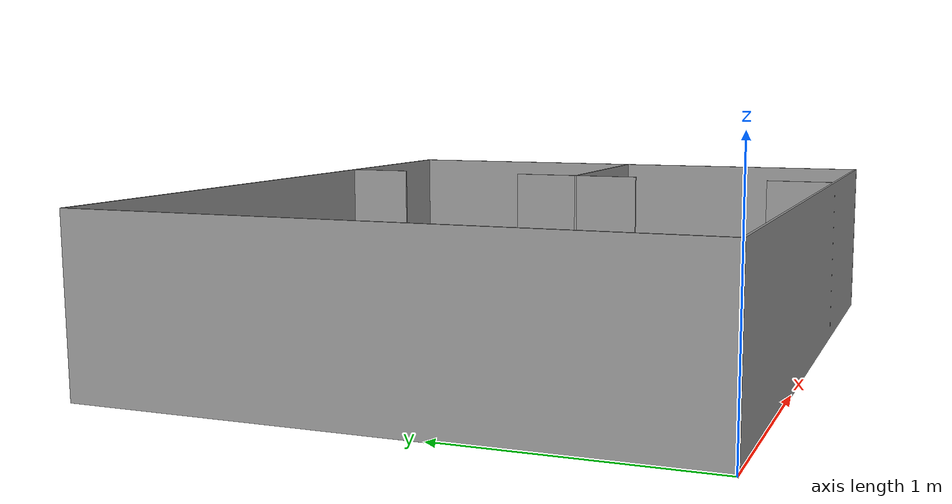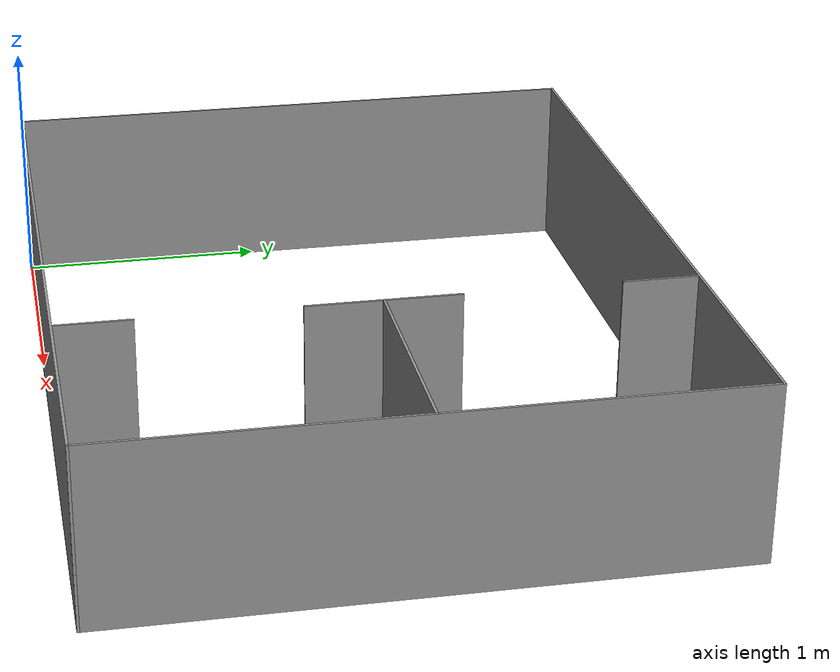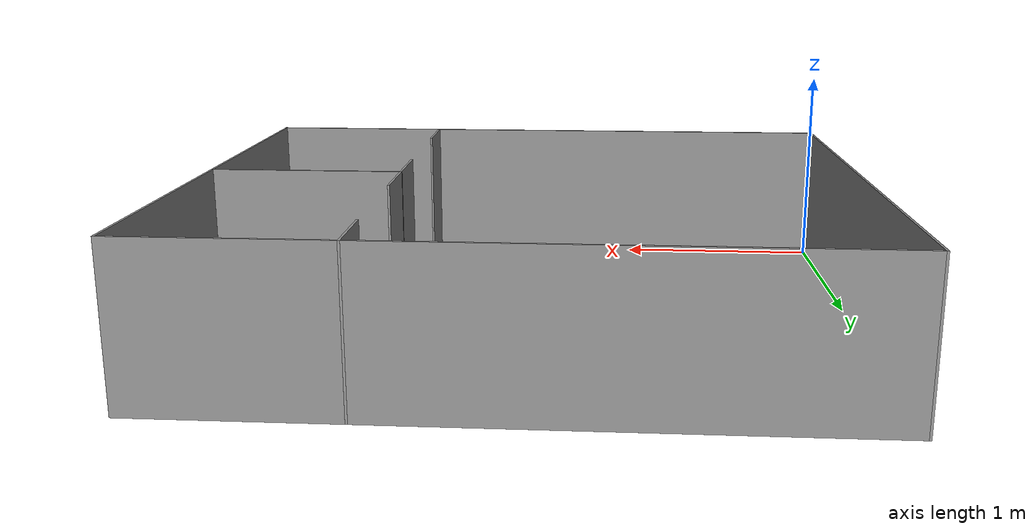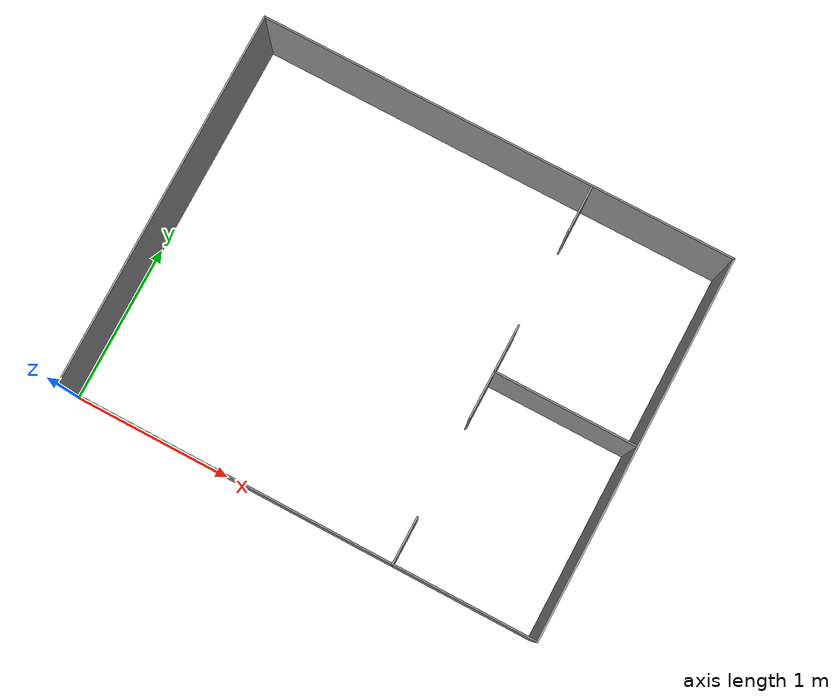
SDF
<?xml version='1.0'?>
<sdf version='1.7'>
  <model name='robot_tank_walls'>
    <pose>1.495 1.195 0 0 -0 0</pose>
    <link name='Wall_39'>
      <collision name='Wall_39_Collision'>
        <geometry>
          <box>
            <size>3 0.01 0.7</size>
          </box>
        </geometry>
        <pose>0 0 0.35 0 -0 0</pose>
      </collision>
      <visual name='Wall_39_Visual'>
        <pose>0 0 0.35 0 -0 0</pose>
        <geometry>
          <box>
            <size>3 0.01 0.7</size>
          </box>
        </geometry>
        <material>
          <script>
            <uri>file://media/materials/scripts/gazebo.material</uri>
            <name>Gazebo/Grey</name>
          </script>
          <ambient>1 1 1 1</ambient>
        </material>
        <meta>
          <layer>0</layer>
        </meta>
      </visual>
      <pose>0 -1.195 0 0 -0 0</pose>
    </link>
    <link name='Wall_41'>
      <collision name='Wall_41_Collision'>
        <geometry>
          <box>
            <size>2.4 0.01 0.7</size>
          </box>
        </geometry>
        <pose>0 0 0.35 0 -0 0</pose>
      </collision>
      <visual name='Wall_41_Visual'>
        <pose>0 0 0.35 0 -0 0</pose>
        <geometry>
          <box>
            <size>2.4 0.01 0.7</size>
          </box>
        </geometry>
        <material>
          <script>
            <uri>file://media/materials/scripts/gazebo.material</uri>
            <name>Gazebo/Grey</name>
          </script>
          <ambient>1 1 1 1</ambient>
        </material>
        <meta>
          <layer>0</layer>
        </meta>
      </visual>
      <pose>-1.495 0 0 0 -0 1.5708</pose>
    </link>
    <link name='Wall_50'>
      <collision name='Wall_50_Collision'>
        <geometry>
          <box>
            <size>3 0.01 0.7</size>
          </box>
        </geometry>
        <pose>0 0 0.35 0 -0 0</pose>
      </collision>
      <visual name='Wall_50_Visual'>
        <pose>0 0 0.35 0 -0 0</pose>
        <geometry>
          <box>
            <size>3 0.01 0.7</size>
          </box>
        </geometry>
        <material>
          <script>
            <uri>file://media/materials/scripts/gazebo.material</uri>
            <name>Gazebo/Grey</name>
          </script>
          <ambient>1 1 1 1</ambient>
        </material>
        <meta>
          <layer>0</layer>
        </meta>
      </visual>
      <pose>0 1.195 0 0 -0 0</pose>
    </link>
    <link name='Wall_52'>
      <collision name='Wall_52_Collision'>
        <geometry>
          <box>
            <size>2.4 0.01 0.7</size>
          </box>
        </geometry>
        <pose>0 0 0.35 0 -0 0</pose>
      </collision>
      <visual name='Wall_52_Visual'>
        <pose>0 0 0.35 0 -0 0</pose>
        <geometry>
          <box>
            <size>2.4 0.01 0.7</size>
          </box>
        </geometry>
        <material>
          <script>
            <uri>file://media/materials/scripts/gazebo.material</uri>
            <name>Gazebo/Grey</name>
          </script>
          <ambient>1 1 1 1</ambient>
        </material>
        <meta>
          <layer>0</layer>
        </meta>
      </visual>
      <pose>1.495 0 0 0 -0 -1.5708</pose>
    </link>
    <link name='Wall_54'>
      <collision name='Wall_54_Collision'>
        <geometry>
          <box>
            <size>0.3 0.01 0.7</size>
          </box>
        </geometry>
        <pose>0 0 0.35 0 -0 0</pose>
      </collision>
      <visual name='Wall_54_Visual'>
        <pose>0 0 0.35 0 -0 0</pose>
        <geometry>
          <box>
            <size>0.3 0.01 0.7</size>
          </box>
        </geometry>
        <material>
          <script>
            <uri>file://media/materials/scripts/gazebo.material</uri>
            <name>Gazebo/Grey</name>
          </script>
          <ambient>1 1 1 1</ambient>
        </material>
        <meta>
          <layer>0</layer>
        </meta>
      </visual>
      <pose>0.605 1.05 0 0 -0 -1.5708</pose>
    </link>
    <link name='Wall_56'>
      <collision name='Wall_56_Collision'>
        <geometry>
          <box>
            <size>0.3 0.01 0.7</size>
          </box>
        </geometry>
        <pose>0 0 0.35 0 -0 0</pose>
      </collision>
      <visual name='Wall_56_Visual'>
        <pose>0 0 0.35 0 -0 0</pose>
        <geometry>
          <box>
            <size>0.3 0.01 0.7</size>
          </box>
        </geometry>
        <material>
          <script>
            <uri>file://media/materials/scripts/gazebo.material</uri>
            <name>Gazebo/Grey</name>
          </script>
          <ambient>1 1 1 1</ambient>
        </material>
        <meta>
          <layer>0</layer>
        </meta>
      </visual>
      <pose>0.605 -1.05 0 0 -0 1.5708</pose>
    </link>
    <link name='Wall_58'>
      <collision name='Wall_58_Collision'>
        <geometry>
          <box>
            <size>0.9 0.01 0.7</size>
          </box>
        </geometry>
        <pose>0 0 0.35 0 -0 0</pose>
      </collision>
      <visual name='Wall_58_Visual'>
        <pose>0 0 0.35 0 -0 0</pose>
        <geometry>
          <box>
            <size>0.9 0.01 0.7</size>
          </box>
        </geometry>
        <material>
          <script>
            <uri>file://media/materials/scripts/gazebo.material</uri>
            <name>Gazebo/Grey</name>
          </script>
          <ambient>1 1 1 1</ambient>
        </material>
        <meta>
          <layer>0</layer>
        </meta>
      </visual>
      <pose>1.05 0.005 0 0 -0 3.14159</pose>
    </link>
    <link name='Wall_60'>
      <collision name='Wall_60_Collision'>
        <geometry>
          <box>
            <size>0.3 0.01 0.7</size>
          </box>
        </geometry>
        <pose>0 0 0.35 0 -0 0</pose>
      </collision>
      <visual name='Wall_60_Visual'>
        <pose>0 0 0.35 0 -0 0</pose>
        <geometry>
          <box>
            <size>0.3 0.01 0.7</size>
          </box>
        </geometry>
        <material>
          <script>
            <uri>file://media/materials/scripts/gazebo.material</uri>
            <name>Gazebo/Grey</name>
          </script>
          <ambient>1 1 1 1</ambient>
        </material>
        <meta>
          <layer>0</layer>
        </meta>
      </visual>
      <pose>0.605 -0.14 0 0 -0 -1.5708</pose>
    </link>
    <link name='Wall_62'>
      <collision name='Wall_62_Collision'>
        <geometry>
          <box>
            <size>0.3 0.01 0.7</size>
          </box>
        </geometry>
        <pose>0 0 0.35 0 -0 0</pose>
      </collision>
      <visual name='Wall_62_Visual'>
        <pose>0 0 0.35 0 -0 0</pose>
        <geometry>
          <box>
            <size>0.3 0.01 0.7</size>
          </box>
        </geometry>
        <material>
          <script>
            <uri>file://media/materials/scripts/gazebo.material</uri>
            <name>Gazebo/Grey</name>
          </script>
          <ambient>1 1 1 1</ambient>
        </material>
        <meta>
          <layer>0</layer>
        </meta>
      </visual>
      <pose>0.605 0.15 0 0 -0 1.5708</pose>
    </link>
    <static>1</static>
  </model>
</sdf>
